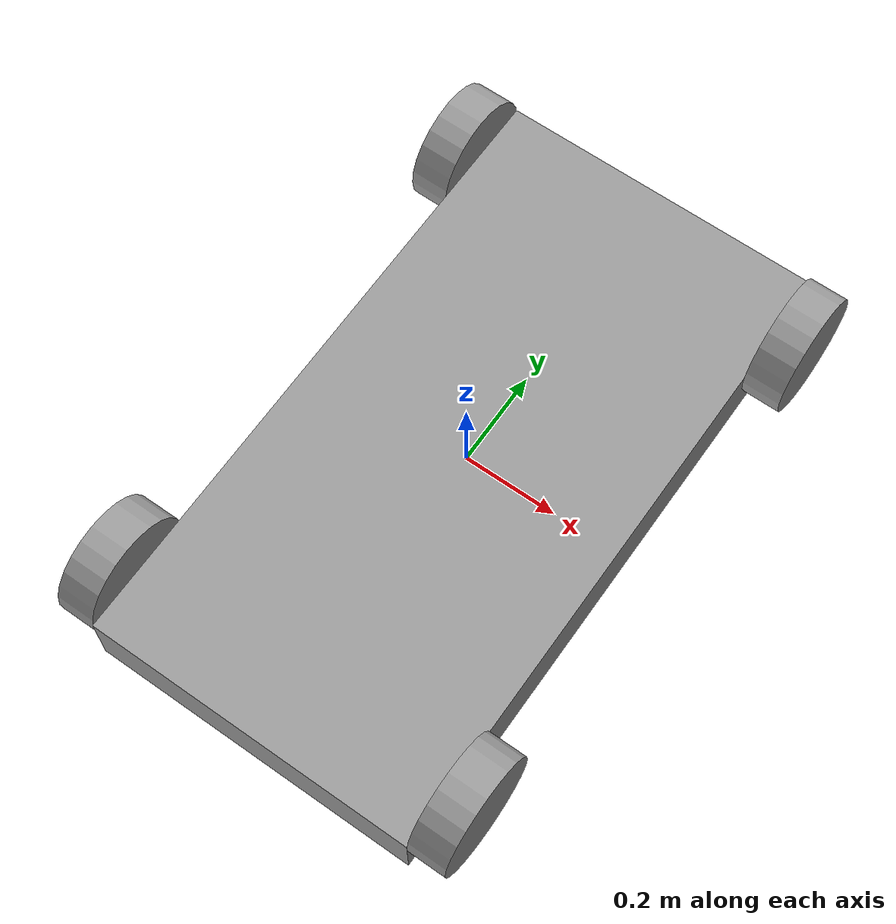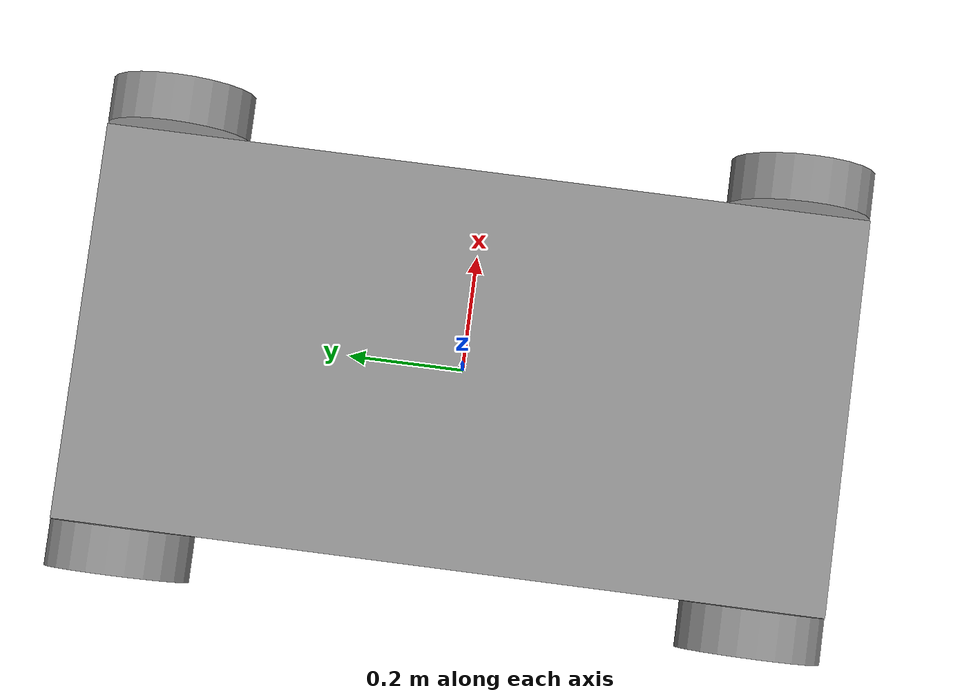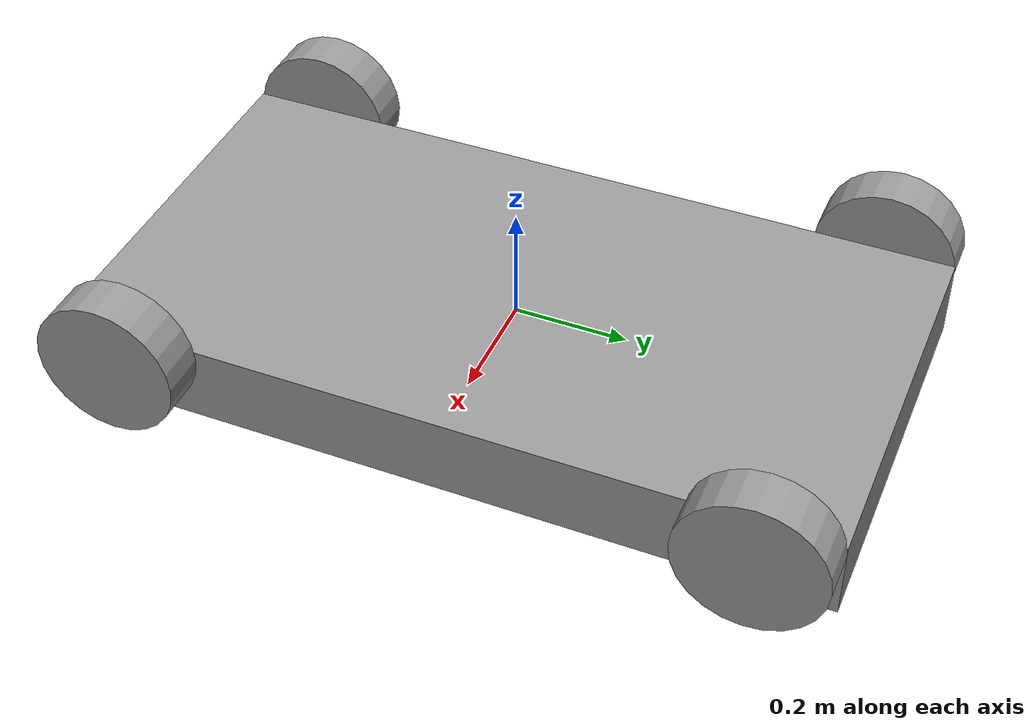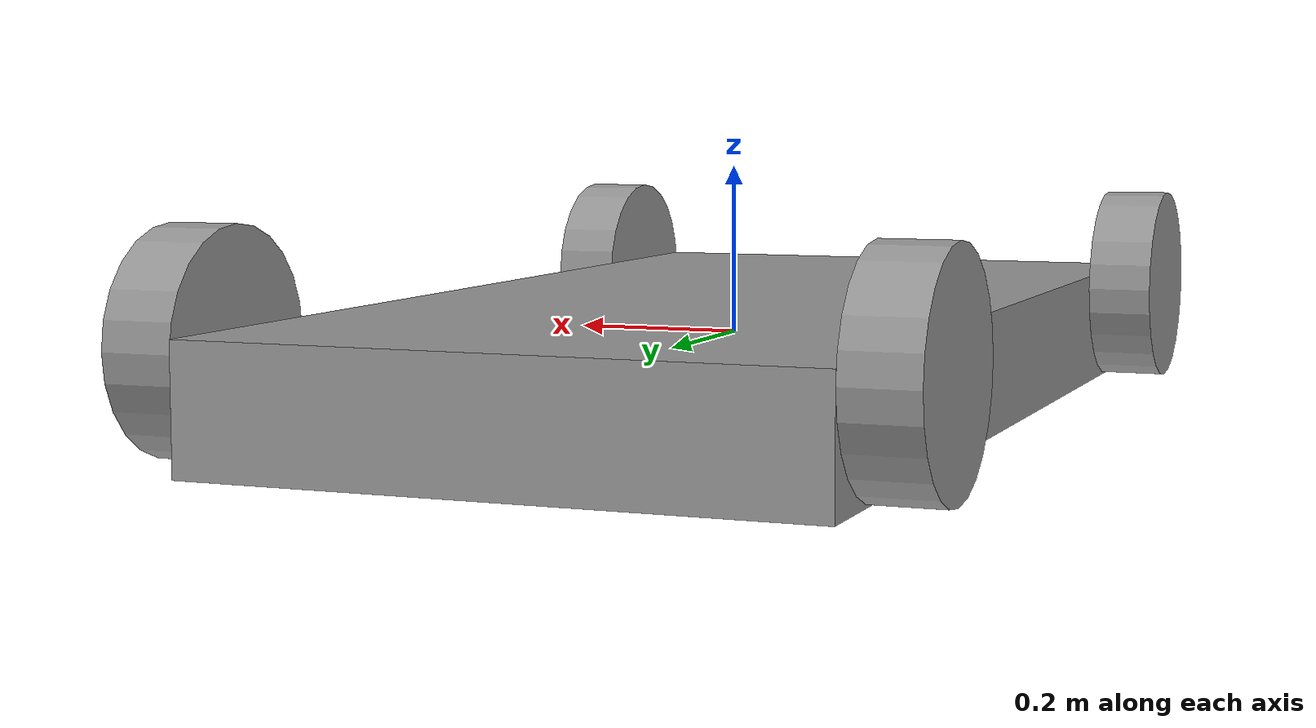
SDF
<?xml version='1.0'?>
<sdf version='1.6'>
  <model name='fraulaine'>
    <link name='link_3'>
      <inertial>
        <mass>0.131821</mass>
        <inertia>
          <ixx>0.0200038</ixx>
          <ixy>0</ixy>
          <ixz>0</ixz>
          <iyy>0.00551621</iyy>
          <iyz>0</iyz>
          <izz>0.0250806</izz>
        </inertia>
        <pose frame=''>0 0 0 0 -0 0</pose>
      </inertial>
      <pose frame=''>0 0 -0.026212 0 -0 0</pose>
      <self_collide>0</self_collide>
      <enable_wind>0</enable_wind>
      <kinematic>0</kinematic>
      <visual name='visual'>
        <pose frame=''>0 0 0 0 -0 0</pose>
        <geometry>
          <box>
            <size>0.694375 1.34201 0.141415</size>
          </box>
        </geometry>
        <material>
          <lighting>1</lighting>
          <script>
            <uri>file://media/materials/scripts/gazebo.material</uri>
            <name>Gazebo/Grey</name>
          </script>
          <shader type='pixel'/>
          <emissive>0 0 0 1</emissive>
        </material>
        <transparency>0</transparency>
        <cast_shadows>1</cast_shadows>
      </visual>
      <collision name='collision'>
        <laser_retro>0</laser_retro>
        <max_contacts>10</max_contacts>
        <pose frame=''>0 0 0 0 -0 0</pose>
        <geometry>
          <box>
            <size>0.694375 1.34201 0.141415</size>
          </box>
        </geometry>
        <surface>
          <friction>
            <ode>
              <mu>1</mu>
              <mu2>1</mu2>
              <fdir1>0 0 0</fdir1>
              <slip1>0</slip1>
              <slip2>0</slip2>
            </ode>
            <torsional>
              <coefficient>1</coefficient>
              <patch_radius>0</patch_radius>
              <surface_radius>0</surface_radius>
              <use_patch_radius>1</use_patch_radius>
              <ode>
                <slip>0</slip>
              </ode>
            </torsional>
          </friction>
          <bounce>
            <restitution_coefficient>0</restitution_coefficient>
            <threshold>1e+06</threshold>
          </bounce>
          <contact>
            <collide_without_contact>0</collide_without_contact>
            <collide_without_contact_bitmask>1</collide_without_contact_bitmask>
            <collide_bitmask>1</collide_bitmask>
            <ode>
              <soft_cfm>0</soft_cfm>
              <soft_erp>0.2</soft_erp>
              <kp>1e+13</kp>
              <kd>1</kd>
              <max_vel>0.01</max_vel>
              <min_depth>0</min_depth>
            </ode>
            <bullet>
              <split_impulse>1</split_impulse>
              <split_impulse_penetration_threshold>-0.01</split_impulse_penetration_threshold>
              <soft_cfm>0</soft_cfm>
              <soft_erp>0.2</soft_erp>
              <kp>1e+13</kp>
              <kd>1</kd>
            </bullet>
          </contact>
        </surface>
      </collision>
    </link>
    <link name='link_4_clone_0_clone'>
      <inertial>
        <mass>0.00501479</mass>
        <inertia>
          <ixx>2.22706e-05</ixx>
          <ixy>0</ixy>
          <ixz>0</ixz>
          <iyy>2.22706e-05</iyy>
          <iyz>0</iyz>
          <izz>3.91482e-05</izz>
        </inertia>
        <pose frame=''>0 0 0 0 -0 0</pose>
      </inertial>
      <pose frame=''>0.387352 0.546053 0.028033 -3e-06 1.57079 -3.14159</pose>
      <gravity>1</gravity>
      <self_collide>0</self_collide>
      <kinematic>0</kinematic>
      <enable_wind>0</enable_wind>
      <visual name='visual'>
        <pose frame=''>0 0 0 0 -0 0</pose>
        <geometry>
          <cylinder>
            <radius>0.124952</radius>
            <length>0.0803268</length>
          </cylinder>
        </geometry>
        <material>
          <lighting>1</lighting>
          <script>
            <uri>file://media/materials/scripts/gazebo.material</uri>
            <name>Gazebo/Grey</name>
          </script>
          <shader type='pixel'>
            <normal_map>__default__</normal_map>
          </shader>
          <emissive>0 0 0 1</emissive>
        </material>
        <transparency>0</transparency>
        <cast_shadows>1</cast_shadows>
      </visual>
      <collision name='collision'>
        <laser_retro>0</laser_retro>
        <max_contacts>10</max_contacts>
        <pose frame=''>0 0 0 0 -0 0</pose>
        <geometry>
          <cylinder>
            <radius>0.124952</radius>
            <length>0.080327</length>
          </cylinder>
        </geometry>
        <surface>
          <friction>
            <ode>
              <mu>1</mu>
              <mu2>1</mu2>
              <fdir1>0 0 0</fdir1>
              <slip1>0</slip1>
              <slip2>0</slip2>
            </ode>
            <torsional>
              <coefficient>1</coefficient>
              <patch_radius>0</patch_radius>
              <surface_radius>0</surface_radius>
              <use_patch_radius>1</use_patch_radius>
              <ode>
                <slip>0</slip>
              </ode>
            </torsional>
          </friction>
          <bounce>
            <restitution_coefficient>0</restitution_coefficient>
            <threshold>1e+06</threshold>
          </bounce>
          <contact>
            <collide_without_contact>0</collide_without_contact>
            <collide_without_contact_bitmask>1</collide_without_contact_bitmask>
            <collide_bitmask>1</collide_bitmask>
            <ode>
              <soft_cfm>0</soft_cfm>
              <soft_erp>0.2</soft_erp>
              <kp>1e+13</kp>
              <kd>1</kd>
              <max_vel>0.01</max_vel>
              <min_depth>0</min_depth>
            </ode>
            <bullet>
              <split_impulse>1</split_impulse>
              <split_impulse_penetration_threshold>-0.01</split_impulse_penetration_threshold>
              <soft_cfm>0</soft_cfm>
              <soft_erp>0.2</soft_erp>
              <kp>1e+13</kp>
              <kd>1</kd>
            </bullet>
          </contact>
        </surface>
      </collision>
    </link>
    <link name='link_4_clone_0_clone_clone'>
      <inertial>
        <mass>0.00501479</mass>
        <inertia>
          <ixx>2.22706e-05</ixx>
          <ixy>0</ixy>
          <ixz>0</ixz>
          <iyy>2.22706e-05</iyy>
          <iyz>0</iyz>
          <izz>3.91482e-05</izz>
        </inertia>
        <pose frame=''>0 0 0 0 -0 0</pose>
      </inertial>
      <pose frame=''>-0.387353 0.546053 0.028033 3.14159 -1.57079 3.14159</pose>
      <gravity>1</gravity>
      <self_collide>0</self_collide>
      <kinematic>0</kinematic>
      <enable_wind>0</enable_wind>
      <visual name='visual'>
        <pose frame=''>0 0 0 0 -0 0</pose>
        <geometry>
          <cylinder>
            <radius>0.124952</radius>
            <length>0.0803268</length>
          </cylinder>
        </geometry>
        <material>
          <lighting>1</lighting>
          <script>
            <uri>file://media/materials/scripts/gazebo.material</uri>
            <name>Gazebo/Grey</name>
          </script>
          <shader type='pixel'>
            <normal_map>__default__</normal_map>
          </shader>
          <emissive>0 0 0 1</emissive>
        </material>
        <transparency>0</transparency>
        <cast_shadows>1</cast_shadows>
      </visual>
      <collision name='collision'>
        <laser_retro>0</laser_retro>
        <max_contacts>10</max_contacts>
        <pose frame=''>0 0 0 0 -0 0</pose>
        <geometry>
          <cylinder>
            <radius>0.124952</radius>
            <length>0.080327</length>
          </cylinder>
        </geometry>
        <surface>
          <friction>
            <ode>
              <mu>1</mu>
              <mu2>1</mu2>
              <fdir1>0 0 0</fdir1>
              <slip1>0</slip1>
              <slip2>0</slip2>
            </ode>
            <torsional>
              <coefficient>1</coefficient>
              <patch_radius>0</patch_radius>
              <surface_radius>0</surface_radius>
              <use_patch_radius>1</use_patch_radius>
              <ode>
                <slip>0</slip>
              </ode>
            </torsional>
          </friction>
          <bounce>
            <restitution_coefficient>0</restitution_coefficient>
            <threshold>1e+06</threshold>
          </bounce>
          <contact>
            <collide_without_contact>0</collide_without_contact>
            <collide_without_contact_bitmask>1</collide_without_contact_bitmask>
            <collide_bitmask>1</collide_bitmask>
            <ode>
              <soft_cfm>0</soft_cfm>
              <soft_erp>0.2</soft_erp>
              <kp>1e+13</kp>
              <kd>1</kd>
              <max_vel>0.01</max_vel>
              <min_depth>0</min_depth>
            </ode>
            <bullet>
              <split_impulse>1</split_impulse>
              <split_impulse_penetration_threshold>-0.01</split_impulse_penetration_threshold>
              <soft_cfm>0</soft_cfm>
              <soft_erp>0.2</soft_erp>
              <kp>1e+13</kp>
              <kd>1</kd>
            </bullet>
          </contact>
        </surface>
      </collision>
    </link>
    <link name='link_4_clone_0_clone_clone_clone'>
      <inertial>
        <mass>0.00501479</mass>
        <inertia>
          <ixx>2.22706e-05</ixx>
          <ixy>0</ixy>
          <ixz>0</ixz>
          <iyy>2.22706e-05</iyy>
          <iyz>0</iyz>
          <izz>3.91482e-05</izz>
        </inertia>
        <pose frame=''>0 0 0 0 -0 0</pose>
      </inertial>
      <pose frame=''>-0.387352 -0.546053 0.028033 -3e-06 1.57079 -3.14159</pose>
      <gravity>1</gravity>
      <self_collide>0</self_collide>
      <kinematic>0</kinematic>
      <enable_wind>0</enable_wind>
      <visual name='visual'>
        <pose frame=''>0 0 0 0 -0 0</pose>
        <geometry>
          <cylinder>
            <radius>0.124952</radius>
            <length>0.0803268</length>
          </cylinder>
        </geometry>
        <material>
          <lighting>1</lighting>
          <script>
            <uri>file://media/materials/scripts/gazebo.material</uri>
            <name>Gazebo/Grey</name>
          </script>
          <shader type='pixel'>
            <normal_map>__default__</normal_map>
          </shader>
          <emissive>0 0 0 1</emissive>
        </material>
        <transparency>0</transparency>
        <cast_shadows>1</cast_shadows>
      </visual>
      <collision name='collision'>
        <laser_retro>0</laser_retro>
        <max_contacts>10</max_contacts>
        <pose frame=''>0 0 0 0 -0 0</pose>
        <geometry>
          <cylinder>
            <radius>0.124952</radius>
            <length>0.080327</length>
          </cylinder>
        </geometry>
        <surface>
          <friction>
            <ode>
              <mu>1</mu>
              <mu2>1</mu2>
              <fdir1>0 0 0</fdir1>
              <slip1>0</slip1>
              <slip2>0</slip2>
            </ode>
            <torsional>
              <coefficient>1</coefficient>
              <patch_radius>0</patch_radius>
              <surface_radius>0</surface_radius>
              <use_patch_radius>1</use_patch_radius>
              <ode>
                <slip>0</slip>
              </ode>
            </torsional>
          </friction>
          <bounce>
            <restitution_coefficient>0</restitution_coefficient>
            <threshold>1e+06</threshold>
          </bounce>
          <contact>
            <collide_without_contact>0</collide_without_contact>
            <collide_without_contact_bitmask>1</collide_without_contact_bitmask>
            <collide_bitmask>1</collide_bitmask>
            <ode>
              <soft_cfm>0</soft_cfm>
              <soft_erp>0.2</soft_erp>
              <kp>1e+13</kp>
              <kd>1</kd>
              <max_vel>0.01</max_vel>
              <min_depth>0</min_depth>
            </ode>
            <bullet>
              <split_impulse>1</split_impulse>
              <split_impulse_penetration_threshold>-0.01</split_impulse_penetration_threshold>
              <soft_cfm>0</soft_cfm>
              <soft_erp>0.2</soft_erp>
              <kp>1e+13</kp>
              <kd>1</kd>
            </bullet>
          </contact>
        </surface>
      </collision>
    </link>
    <link name='link_4_clone_0_clone_clone_clone_clone'>
      <inertial>
        <mass>0.00501479</mass>
        <inertia>
          <ixx>2.22706e-05</ixx>
          <ixy>0</ixy>
          <ixz>0</ixz>
          <iyy>2.22706e-05</iyy>
          <iyz>0</iyz>
          <izz>3.91482e-05</izz>
        </inertia>
        <pose frame=''>0 0 0 0 -0 0</pose>
      </inertial>
      <pose frame=''>0.387352 -0.546053 0.028033 3.14159 -1.57079 3.14159</pose>
      <gravity>1</gravity>
      <self_collide>0</self_collide>
      <kinematic>0</kinematic>
      <enable_wind>0</enable_wind>
      <visual name='visual'>
        <pose frame=''>0 0 0 0 -0 0</pose>
        <geometry>
          <cylinder>
            <radius>0.124952</radius>
            <length>0.0803268</length>
          </cylinder>
        </geometry>
        <material>
          <lighting>1</lighting>
          <script>
            <uri>file://media/materials/scripts/gazebo.material</uri>
            <name>Gazebo/Grey</name>
          </script>
          <shader type='pixel'>
            <normal_map>__default__</normal_map>
          </shader>
          <emissive>0 0 0 1</emissive>
        </material>
        <transparency>0</transparency>
        <cast_shadows>1</cast_shadows>
      </visual>
      <collision name='collision'>
        <laser_retro>0</laser_retro>
        <max_contacts>10</max_contacts>
        <pose frame=''>0 0 0 0 -0 0</pose>
        <geometry>
          <cylinder>
            <radius>0.124952</radius>
            <length>0.080327</length>
          </cylinder>
        </geometry>
        <surface>
          <friction>
            <ode>
              <mu>1</mu>
              <mu2>1</mu2>
              <fdir1>0 0 0</fdir1>
              <slip1>0</slip1>
              <slip2>0</slip2>
            </ode>
            <torsional>
              <coefficient>1</coefficient>
              <patch_radius>0</patch_radius>
              <surface_radius>0</surface_radius>
              <use_patch_radius>1</use_patch_radius>
              <ode>
                <slip>0</slip>
              </ode>
            </torsional>
          </friction>
          <bounce>
            <restitution_coefficient>0</restitution_coefficient>
            <threshold>1e+06</threshold>
          </bounce>
          <contact>
            <collide_without_contact>0</collide_without_contact>
            <collide_without_contact_bitmask>1</collide_without_contact_bitmask>
            <collide_bitmask>1</collide_bitmask>
            <ode>
              <soft_cfm>0</soft_cfm>
              <soft_erp>0.2</soft_erp>
              <kp>1e+13</kp>
              <kd>1</kd>
              <max_vel>0.01</max_vel>
              <min_depth>0</min_depth>
            </ode>
            <bullet>
              <split_impulse>1</split_impulse>
              <split_impulse_penetration_threshold>-0.01</split_impulse_penetration_threshold>
              <soft_cfm>0</soft_cfm>
              <soft_erp>0.2</soft_erp>
              <kp>1e+13</kp>
              <kd>1</kd>
            </bullet>
          </contact>
        </surface>
      </collision>
    </link>
    <joint name='link_3_JOINT_6' type='revolute2'>
      <parent>link_3</parent>
      <child>link_4_clone_0_clone</child>
      <pose frame=''>0 0 0 0 -0 0</pose>
      <axis>
        <xyz>0 0 1</xyz>
        <use_parent_model_frame>0</use_parent_model_frame>
        <limit>
          <lower>-1.79769e+308</lower>
          <upper>1.79769e+308</upper>
          <effort>-1</effort>
          <velocity>-1</velocity>
        </limit>
        <dynamics>
          <spring_reference>0</spring_reference>
          <spring_stiffness>0</spring_stiffness>
          <damping>0</damping>
          <friction>0</friction>
        </dynamics>
      </axis>
      <axis2>
        <xyz>0 0 1</xyz>
        <use_parent_model_frame>0</use_parent_model_frame>
        <dynamics>
          <spring_reference>0</spring_reference>
          <spring_stiffness>0</spring_stiffness>
          <damping>0</damping>
          <friction>0</friction>
        </dynamics>
        <limit>
          <lower>-1e+16</lower>
          <upper>1e+16</upper>
          <effort>-1</effort>
          <velocity>-1</velocity>
        </limit>
      </axis2>
      <physics>
        <ode>
          <limit>
            <cfm>0</cfm>
            <erp>0.2</erp>
          </limit>
          <suspension>
            <cfm>0</cfm>
            <erp>0.2</erp>
          </suspension>
        </ode>
      </physics>
    </joint>
    <joint name='link_3_JOINT_7' type='revolute2'>
      <parent>link_3</parent>
      <child>link_4_clone_0_clone_clone</child>
      <pose frame=''>0 0 0 0 -0 0</pose>
      <axis>
        <xyz>0 0 -1</xyz>
        <use_parent_model_frame>0</use_parent_model_frame>
        <limit>
          <lower>-1.79769e+308</lower>
          <upper>1.79769e+308</upper>
          <effort>-1</effort>
          <velocity>-1</velocity>
        </limit>
        <dynamics>
          <spring_reference>0</spring_reference>
          <spring_stiffness>0</spring_stiffness>
          <damping>0</damping>
          <friction>0</friction>
        </dynamics>
      </axis>
      <axis2>
        <xyz>0 0 1</xyz>
        <use_parent_model_frame>0</use_parent_model_frame>
        <dynamics>
          <spring_reference>0</spring_reference>
          <spring_stiffness>0</spring_stiffness>
          <damping>0</damping>
          <friction>0</friction>
        </dynamics>
        <limit>
          <lower>-1e+16</lower>
          <upper>1e+16</upper>
          <effort>-1</effort>
          <velocity>-1</velocity>
        </limit>
      </axis2>
      <physics>
        <ode>
          <limit>
            <cfm>0</cfm>
            <erp>0.2</erp>
          </limit>
          <suspension>
            <cfm>0</cfm>
            <erp>0.2</erp>
          </suspension>
        </ode>
      </physics>
    </joint>
    <joint name='link_3_JOINT_8' type='revolute2'>
      <parent>link_3</parent>
      <child>link_4_clone_0_clone_clone_clone</child>
      <pose frame=''>0 0 0 0 -0 0</pose>
      <axis>
        <xyz>0 0 -1</xyz>
        <use_parent_model_frame>0</use_parent_model_frame>
        <limit>
          <lower>-1.79769e+308</lower>
          <upper>1.79769e+308</upper>
          <effort>-1</effort>
          <velocity>-1</velocity>
        </limit>
        <dynamics>
          <spring_reference>0</spring_reference>
          <spring_stiffness>0</spring_stiffness>
          <damping>0</damping>
          <friction>0</friction>
        </dynamics>
      </axis>
      <axis2>
        <xyz>0 0 1</xyz>
        <use_parent_model_frame>0</use_parent_model_frame>
        <dynamics>
          <spring_reference>0</spring_reference>
          <spring_stiffness>0</spring_stiffness>
          <damping>0</damping>
          <friction>0</friction>
        </dynamics>
        <limit>
          <lower>-1e+16</lower>
          <upper>1e+16</upper>
          <effort>-1</effort>
          <velocity>-1</velocity>
        </limit>
      </axis2>
      <physics>
        <ode>
          <limit>
            <cfm>0</cfm>
            <erp>0.2</erp>
          </limit>
          <suspension>
            <cfm>0</cfm>
            <erp>0.2</erp>
          </suspension>
        </ode>
      </physics>
    </joint>
    <joint name='link_3_JOINT_9' type='revolute2'>
      <parent>link_3</parent>
      <child>link_4_clone_0_clone_clone_clone_clone</child>
      <pose frame=''>0 0 0 0 -0 0</pose>
      <axis>
        <xyz>0 0 1</xyz>
        <use_parent_model_frame>0</use_parent_model_frame>
        <limit>
          <lower>-1.79769e+308</lower>
          <upper>1.79769e+308</upper>
          <effort>-1</effort>
          <velocity>-1</velocity>
        </limit>
        <dynamics>
          <spring_reference>0</spring_reference>
          <spring_stiffness>0</spring_stiffness>
          <damping>0</damping>
          <friction>0</friction>
        </dynamics>
      </axis>
      <axis2>
        <xyz>0 0 1</xyz>
        <use_parent_model_frame>0</use_parent_model_frame>
        <dynamics>
          <spring_reference>0</spring_reference>
          <spring_stiffness>0</spring_stiffness>
          <damping>0</damping>
          <friction>0</friction>
        </dynamics>
        <limit>
          <lower>-1e+16</lower>
          <upper>1e+16</upper>
          <effort>-1</effort>
          <velocity>-1</velocity>
        </limit>
      </axis2>
      <physics>
        <ode>
          <limit>
            <cfm>0</cfm>
            <erp>0.2</erp>
          </limit>
          <suspension>
            <cfm>0</cfm>
            <erp>0.2</erp>
          </suspension>
        </ode>
      </physics>
    </joint>
    <static>0</static>
    <allow_auto_disable>1</allow_auto_disable>
  </model>
</sdf>
